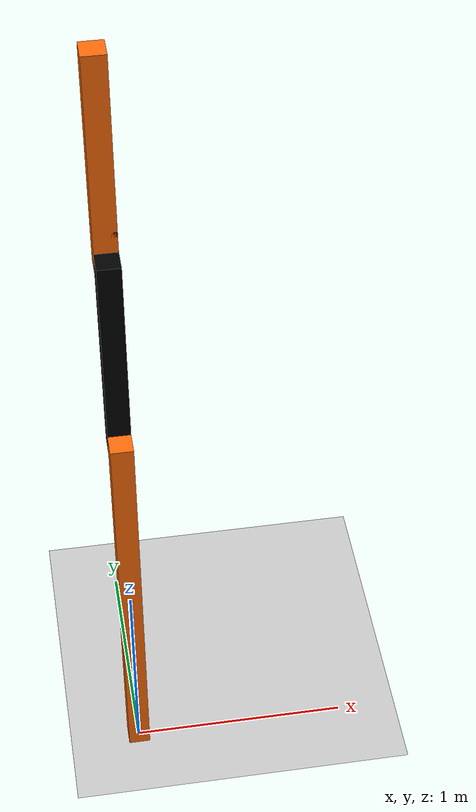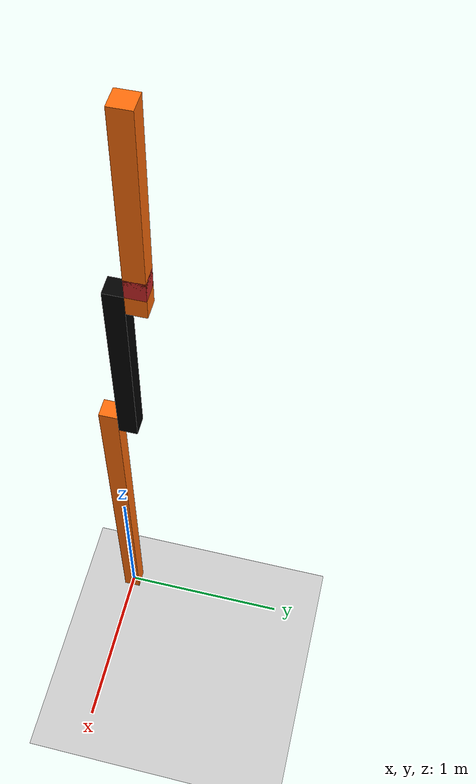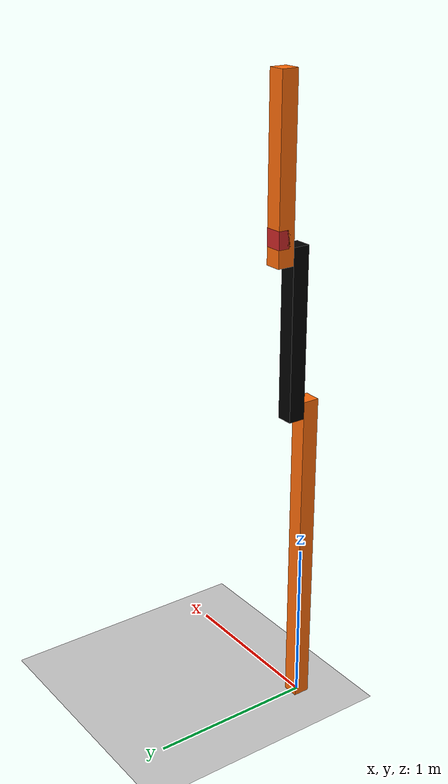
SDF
<!--
gz topic -p "/gazebo/default/rrbot/command"  "gazebo.msgs.GzString" -m 'data: "1.0"'

 -->
<?xml version="1.0"?>
<sdf version="1.6">
    <world name="default">
        <gravity>0 0 -9.81</gravity>
        <!-- A global light source -->
        <include>
            <uri>model://sun</uri>
        </include>
        <!-- A ground plane -->
        <include>
            <uri>model://ground_plane</uri>
        </include>
        <include>
            <uri>model://rrbot</uri>
        </include>
    </world>
</sdf>

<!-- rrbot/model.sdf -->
<sdf version="1.6">
  <model name='rrbot'>
    <joint name="weld" type="fixed">
      <parent>world</parent>
      <child>link1</child>
    </joint>
    <link name='link1'>
      <pose>0 0 0 0 -0 0</pose>
      <inertial>
        <pose>0 0 1 0 -0 0</pose>
        <mass>1</mass>
        <inertia>
          <ixx>0.334167</ixx>
          <ixy>0</ixy>
          <ixz>0</ixz>
          <iyy>0.334167</iyy>
          <iyz>0</iyz>
          <izz>0.00166667</izz>
        </inertia>
      </inertial>
      <collision name='link1_collision'>
        <pose>0 0 1 0 -0 0</pose>
        <geometry>
          <box>
            <size>0.1 0.1 2</size>
          </box>
        </geometry>
      </collision>
      <visual name='link1_visual'>
        <pose>0 0 1 0 -0 0</pose>
        <geometry>
          <box>
            <size>0.1 0.1 2</size>
          </box>
        </geometry>
        <material>
          <diffuse> 1 0.423529412 0.039215686 1</diffuse>
          <ambient> 1 0.423529412 0.039215686 1</ambient>
          <specular>1 0.423529412 0.039215686 1</specular>
        </material>
      </visual>
    </link>
    <joint name='joint1' type='revolute'>
      <pose relative_to='link1'>0 0.1 1.95 0 -0 0</pose>
      <parent>link1</parent>
      <child>link2</child>
      <axis>
        <xyz>0 1 0</xyz>
        <limit>
          <lower>-1e+16</lower>
          <upper>1e+16</upper>
        </limit>
        <dynamics>
          <damping>0.7</damping>
          <friction>0.0</friction>
          <spring_reference>0</spring_reference>
          <spring_stiffness>0</spring_stiffness>
        </dynamics>
      </axis>
    </joint>
    <link name='link2'>
      <pose relative_to='joint1'>0 0 0 0 -0 0</pose>
      <inertial>
        <pose>0 0 0.45 0 -0 0</pose>
        <mass>1</mass>
        <inertia>
          <ixx>0.0841667</ixx>
          <ixy>0</ixy>
          <ixz>0</ixz>
          <iyy>0.0841667</iyy>
          <iyz>0</iyz>
          <izz>0.00166667</izz>
        </inertia>
      </inertial>
      <collision name='link2_collision'>
        <pose>0 0 0.45 0 -0 0</pose>
        <geometry>
          <box>
            <size>0.1 0.1 1</size>
          </box>
        </geometry>
      </collision>
      <visual name='link2_visual'>
        <pose>0 0 0.45 0 -0 0</pose>
        <geometry>
          <box>
            <size>0.1 0.1 1</size>
          </box>
        </geometry>
        <material>
          <diffuse> 0 0 0 1</diffuse>
          <ambient> 0 0 0 1</ambient>
          <specular>0 0 0 1</specular>
        </material>
      </visual>
    </link>
    <joint name='joint2' type='revolute'>
      <pose relative_to='link2'>0 0.1 0.9 0 -0 0</pose>
      <parent>link2</parent>
      <child>link3</child>
      <axis>
        <xyz>0 1 0</xyz>
        <limit>
          <lower>-1e+16</lower>
          <upper>1e+16</upper>
        </limit>
        <dynamics>
          <damping>0.7</damping>
          <friction>0.0</friction>
          <spring_reference>0</spring_reference>
          <spring_stiffness>0</spring_stiffness>
        </dynamics>
      </axis>
    </joint>
    <link name='link3'>
      <pose relative_to='joint2'>0 0 0 0 -0 0</pose>
      <inertial>
        <pose>0 0 0.45 0 -0 0</pose>
        <mass>1</mass>
        <inertia>
          <ixx>0.0841667</ixx>
          <ixy>0</ixy>
          <ixz>0</ixz>
          <iyy>0.0841667</iyy>
          <iyz>0</iyz>
          <izz>0.00166667</izz>
        </inertia>
      </inertial>
      <collision name='link3_collision'>
        <pose>0 0 0.45 0 -0 0</pose>
        <geometry>
          <box>
            <size>0.1 0.1 1</size>
          </box>
        </geometry>
      </collision>
      <visual name='link3_visual'>
        <pose>0 0 0.45 0 -0 0</pose>
        <geometry>
          <box>
            <size>0.1 0.1 1</size>
          </box>
        </geometry>
        <material>
          <diffuse> 1 0.423529412 0.039215686 1</diffuse>
          <ambient> 1 0.423529412 0.039215686 1</ambient>
          <specular>1 0.423529412 0.039215686 1</specular>
        </material>
      </visual>
    </link>

    <link name="imu_link">
      <pose relative_to="link3">0 0 0.1 0 0 0</pose>
      <visual name='link4_visual'>
        <geometry>
          <box>
            <size>0.1 0.1 0.1</size>
          </box>
        </geometry>
        <material>
          <script>
            <uri>file://media/materials/scripts/gazebo.material</uri>
            <name>Gazebo/Red</name>
          </script>
        </material>
      </visual>
      <sensor name="link3_imu" type="imu">
        <always_on>1</always_on>
      </sensor>
    </link>

    <joint name="link3_2_imu_link" type="fixed">
      <parent>link3</parent>
      <child>imu_link</child>
    </joint>

    <plugin name="joint_control" filename="libJointControlDemoPlugin.so">
      <joint>joint2</joint>
      <control>
        <p>100.0</p>
        <i>20</i>
        <d>-10</d>
      </control>
    </plugin>
  </model>
</sdf>

<!--
gz topic -p "/gazebo/default/rrbot/command"  "gazebo.msgs.GzString" -m 'data: "1.0"'

 -->
